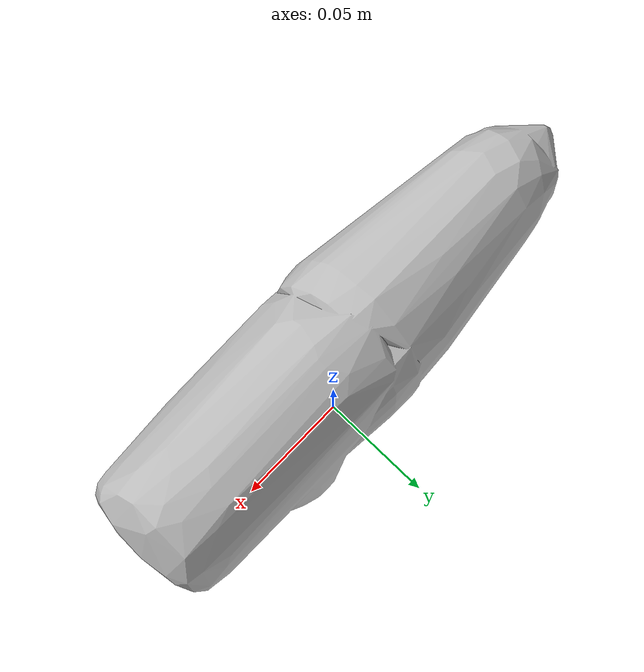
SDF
<?xml version="1.0" ?>
<sdf version="1.4">
  <model name="drill_blue_small">
    <pose>0 0 0.07  0 0 0</pose>
    <static>false</static>
    <link name="body">
      <inertial>
        <pose>0.0047966 -0.0002168 0.0213772  0 0 0</pose>
        <mass>1</mass>
        <inertia>
          <ixx>1.19672e-3</ixx>
          <ixy>0.00656e-3</ixy>
          <ixz>0.26116e-3</ixz>
          <iyy>2.08948e-3</iyy>
          <iyz>0.00124e-3</iyz>
          <izz>1.01916e-3</izz>
        </inertia>
      </inertial>
      <visual name="visual">
        <cast_shadows>true</cast_shadows>
        <geometry>
         <mesh>
           <uri>package://costar_objects/sdf/drill_blue_small/meshes/drill_blue_small.obj</uri>
         </mesh>
        </geometry>
      </visual>
      <collision name="collision">
        <surface>
          <friction>
            <ode>
              <mu>0.3</mu>
              <mu2>0.3</mu2>
            </ode>
          </friction>
        </surface>
        <geometry>
         <mesh>
           <uri>package://costar_objects/sdf/drill_blue_small/meshes/drill_blue_small_simplified.stl</uri>
         </mesh>
        </geometry>
      </collision>
    </link>
  </model>
</sdf>
